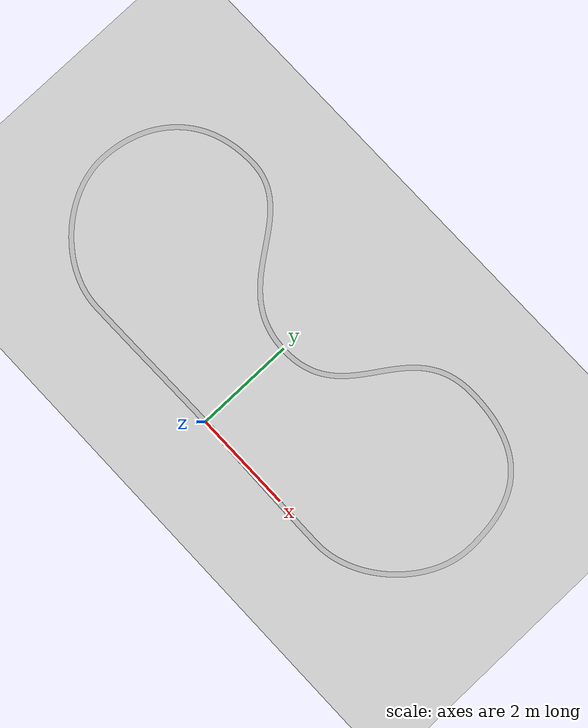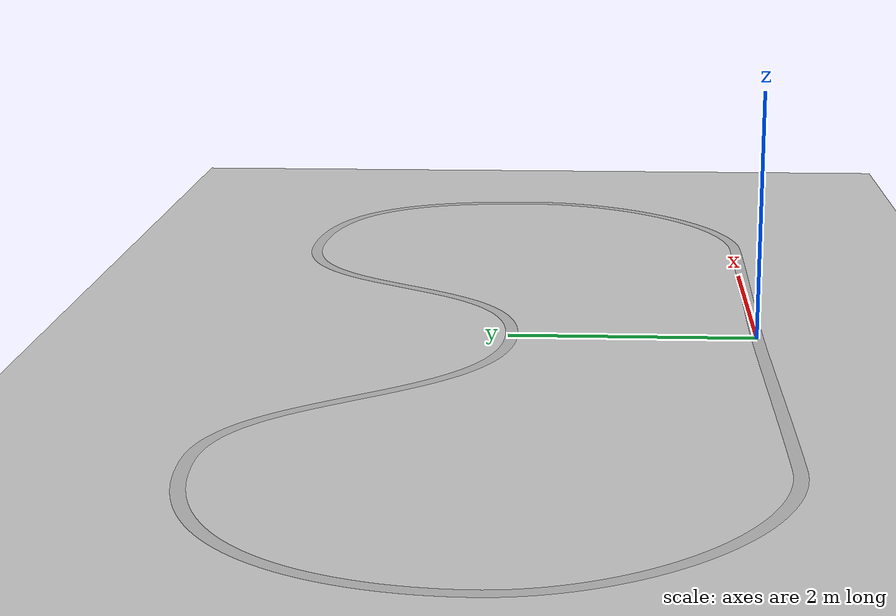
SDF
<?xml version="1.0"?>
<sdf version="1.6">
    <world name="default">
        <light name="sun" type="directional">
            <pose>0 0 30 0.5 0 0 0</pose>
            <cast_shadows>1</cast_shadows>
            <diffuse>0.8 0.8 0.8 1</diffuse>
            <specular>0.1 0.1 0.1 1</specular>
            <attenuation>
                <range>100</range>
            </attenuation>
            <direction>-0.5 0.5 -1</direction>
        </light>

        <physics name='default_physics' default='0' type='ode'>
      <max_step_size>0.001</max_step_size>
      <real_time_factor>1</real_time_factor>
      <real_time_update_rate>1000</real_time_update_rate>
    </physics>

        <gravity>0 0 -9.8</gravity>

        <scene>
            <ambient>1 1 1 1</ambient>
            <background>0.2 0.0 0.2 1</background>
            <shadows>1</shadows>
            <grid>0</grid>
        </scene>

        <include>
            <uri>model://empty_ground_plane</uri>
            <pose>0 0 -0.001 0 0 0</pose>
        </include>

        <!-- create the map -->
        <include>
            <uri>model://simple_track</uri>
        </include>

    </world>
</sdf>

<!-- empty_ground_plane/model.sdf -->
<sdf version="1.6">
    <model name="empty_ground_plane">
        <static>true</static>
        <link name="link">
            <collision name="collision">
                <geometry>
                    <plane>
                        <normal>0 0 1</normal>
                        <size>100 100</size>
                    </plane>
                </geometry>
                <surface>
                    <friction>
                        <ode>
                            <mu>100</mu>
                            <mu2>50</mu2>
                        </ode>
                    </friction>
                </surface>
            </collision>

            <visual name="visual">
                <cast_shadows>false</cast_shadows>
                <geometry>
                    <plane>
                        <normal>0 0 1</normal>
                        <size>100 100</size>
                    </plane>
                </geometry>
                <material>
                    <script>
                        <uri>model://empty_ground_plane/materials/scripts/</uri>
                        <uri>model://empty_ground_plane/materials/textures</uri>
                        <name>EmptyGroundPlane/Image</name>
                    </script>
                </material>
            </visual>
        </link>
    </model>
</sdf>

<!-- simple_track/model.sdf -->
<sdf version="1.6">
    <model name="simple_track">
        <static>true</static>
        <link name="link">
            <visual name="visual">
                <cast_shadows>false</cast_shadows>
                <geometry>
                    <mesh>
                        <uri>model://simple_track/meshes/simple_track.dae</uri>
                        <scale>1 1 1</scale>
                    </mesh>
                </geometry>
            </visual>
        </link>
    </model>
</sdf>
